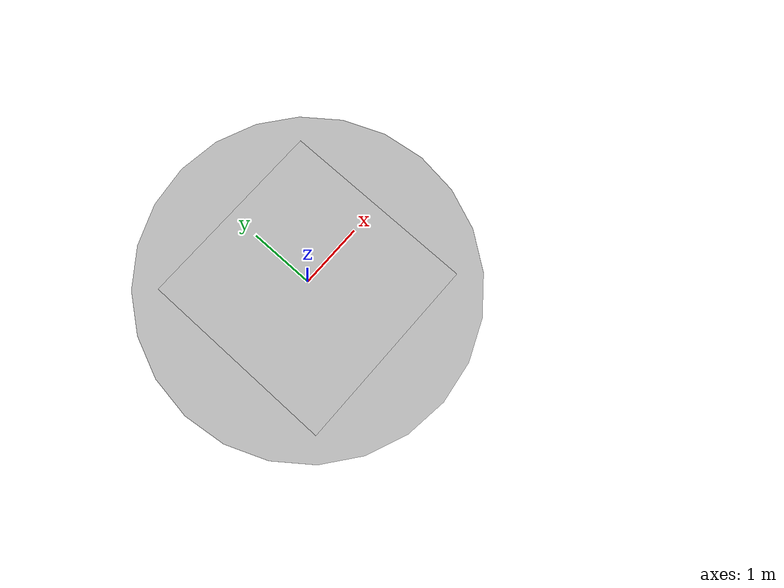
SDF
<?xml version="1.0" ?>
<sdf version="1.5">
  <model name="landmark_2">
    <static>1</static>
    <link name="link1">
      <pose>0 0 0 0 0 0</pose>
      <inertial>
        <mass>0.390</mass>
        <inertia>
          <ixx>0</ixx>
          <ixy>0</ixy>
          <ixz>0</ixz>
          <iyy>0</iyy>
          <iyz>0</iyz>
          <izz>0</izz>
        </inertia>
      </inertial>
      <collision name="collision">
        <geometry>
          <cylinder>
            <radius>2.5</radius>
            <length>0.01</length>
          </cylinder>
        </geometry>
      </collision>
      <visual name="visual">
        <geometry>
          <cylinder>
            <radius>2.5</radius>
            <length>0.01</length>
          </cylinder>
        </geometry>
        <material>
          <script>
            <uri>model://landmark_2/materials/scripts</uri>
            <uri>model://landmark_2/materials/textures</uri>
            <name>Land/Diffuse_2</name>
          </script>
        </material>
      </visual>
    </link>

    <static>1</static>
    <link name='link2'>
      <pose>0 0 0 0 0 0</pose>
      <inertial>
        <mass>0.490</mass>
        <inertia>
          <ixx>0</ixx>
          <ixy>0</ixy>
          <ixz>0</ixz>
          <iyy>0</iyy>
          <iyz>0</iyz>
          <izz>0</izz>
        </inertia>
      </inertial>
      <collision name='collision'>
        <geometry>
           <box>
            <size>3.0 3.0 0.011</size>
           </box>
        </geometry>
      </collision>
      <visual name='visual'>
        <geometry>
           <box>
            <size>3.0 3.0 0.011</size>
           </box>
        </geometry>
        <material>
          <script>
            <uri>model://landmark_2/materials/scripts</uri>
            <uri>model://landmark_2/materials/textures</uri>
            <name>Mark/Diffuse_2</name>
          </script>
        </material>
      </visual>
    </link>
  </model>
</sdf>
